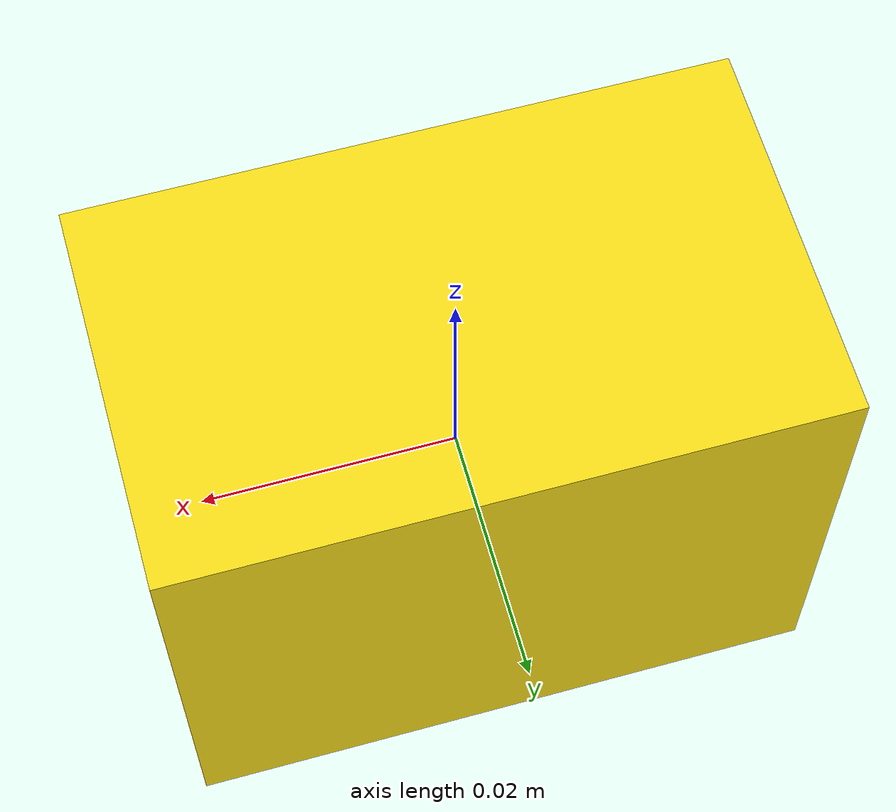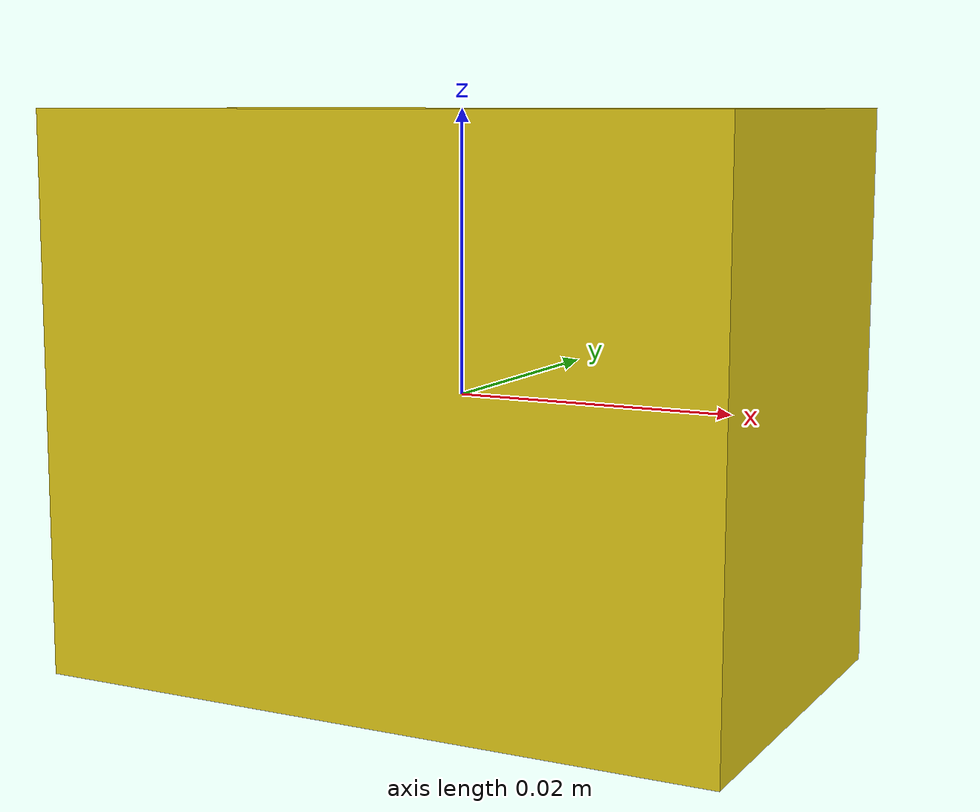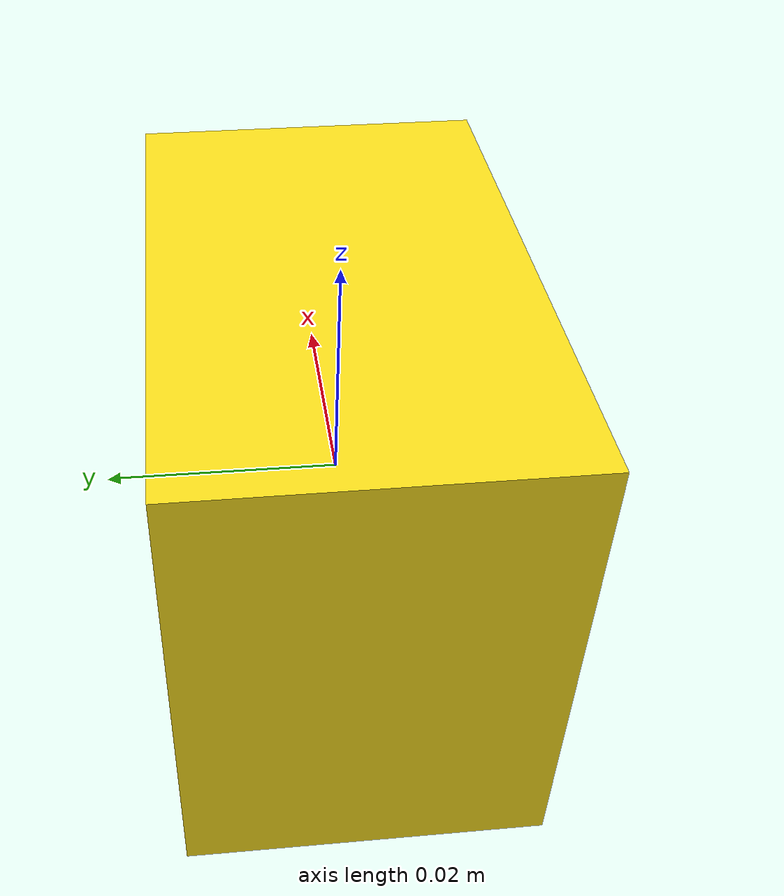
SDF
<?xml version="1.0" ?>
<sdf version="1.9">
  <model name="yellow_box">
    <link name="link">
      <visual name="visual">
        <geometry>
          <box>
            <size>0.05 0.03 0.04</size>
          </box>
        </geometry>
        <material>
          <ambient>0.7 0.6 0.05 1</ambient>
          <diffuse>0.95 0.85 0.10 1</diffuse>
          <specular>0.4 0.4 0.1 1</specular>
        </material>
      </visual>
      <collision name="collision">
        <geometry>
          <box>
            <size>0.05 0.03 0.04</size>
          </box>
        </geometry>
        <surface>
          <friction>
            <ode>
              <mu>1.0</mu>
              <mu2>1.0</mu2>
            </ode>
          </friction>
        </surface>
      </collision>
      <inertial>
        <mass>0.05</mass>
        <inertia>
          <ixx>1.08e-5</ixx>
          <iyy>1.71e-5</iyy>
          <izz>2.04e-5</izz>
          <ixy>0</ixy>
          <ixz>0</ixz>
          <iyz>0</iyz>
        </inertia>
      </inertial>
    </link>
    <!-- SIMULATED ATTACHMENT, NOT A PHYSICAL GRASP (Part 3/A8 decision;
         doc/GRASP_DECISION.md). See red_cube.sdf for the full rationale. -->
    <plugin filename="gz-sim-detachable-joint-system"
            name="gz::sim::systems::DetachableJoint">
      <parent_link>link</parent_link>
      <child_model>mycobot_320</child_model>
      <child_link>link6</child_link>
      <attach_topic>/htgspp/attach</attach_topic>
      <detach_topic>/htgspp/detach</detach_topic>
      <output_topic>/htgspp/attached</output_topic>
    </plugin>
  </model>
</sdf>
